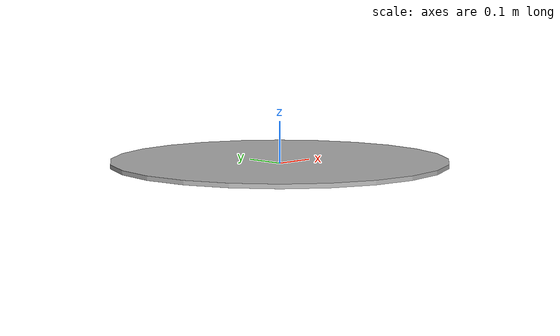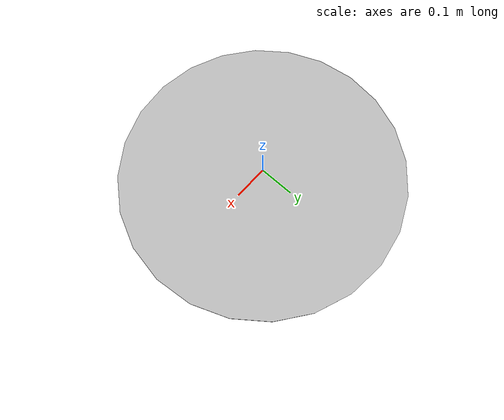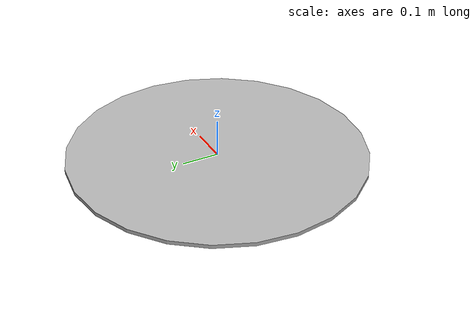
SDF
<?xml version='1.0' encoding='utf-8'?>
<sdf version='1.10'>
<model name='takeoff_platform'>
  <link name='takeoff_link'>
    <enable_wind>false</enable_wind>
    <include><uri>models/miscs/default_platform</uri></include>
    <visual name='takeoff_image'>
      <pose>0 0 0.006 0 0 0</pose>
      <geometry><cylinder>
        <radius>0.4</radius>
        <length>0.01</length>
      </cylinder></geometry>
        <material>
        <diffuse>0.7 0.7 0.7 1</diffuse>
        <specular>1 1 1 1</specular>
        <pbr>
          <metal>
            <albedo_map>materials/textures/takeoff.png</albedo_map>
            <metalness>0</metalness>
            <roughness>1</roughness>
          </metal>
        </pbr>
        </material>
    </visual>
  </link>
  <self_collide>false</self_collide>
</model>
</sdf>
